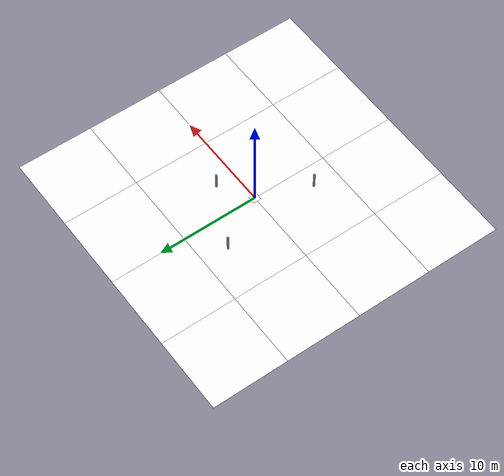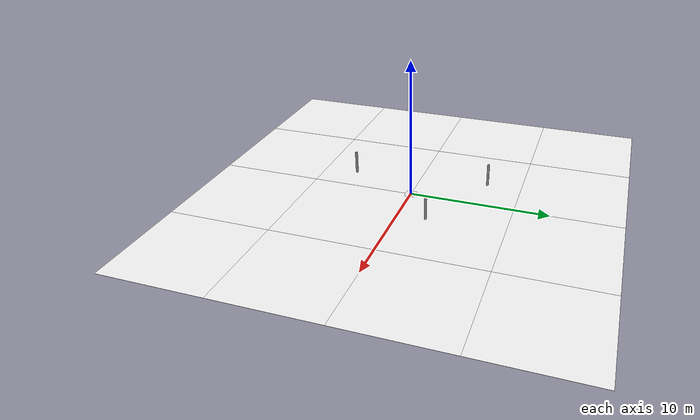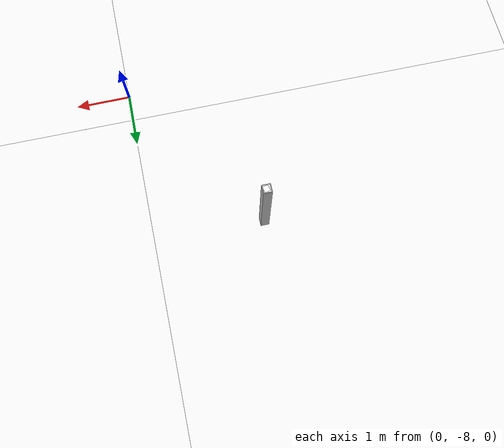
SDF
<?xml version='1.0' encoding='utf-8'?>
<sdf version='1.10'>
  <world name='eletroquad26_m3'>

    <physics type='ode'>
      <max_step_size>0.001</max_step_size>
      <real_time_factor>1</real_time_factor>
      <real_time_update_rate>1000</real_time_update_rate>
    </physics>
    <gravity>0 0 -9.8000000000000007</gravity>
    <magnetic_field>5.5644999999999998e-06 2.2875799999999999e-05 -4.2388400000000002e-05</magnetic_field>
    <atmosphere type='adiabatic'/>

    <scene>
      <ambient>0.400000006 0.400000006 0.400000006 1</ambient>
      <background>0.699999988 0.699999988 0.699999988 1</background>
      <sky/>
      <shadows>true</shadows>
    </scene>

    <!-- Manometros -->
    <model name='manometer1'>
      <include merge='true'><uri>models/eletroquad_26/faulty_or_not/manometer</uri></include>
      <pose degrees='true'>3 2 0.86 0 0 -90</pose> <!--line 24-->
      <static>true</static>
    </model>
    <model name='pointer1'>
      <include merge='true'><uri>models/eletroquad_26/faulty_or_not/manometer_pointer</uri></include>
      <pose degrees='true'>3.009 2 1.711 0 0 341</pose> <!--line 29-->
      <static>true</static>
    </model>

    <model name='manometer2'>
      <include merge='true'><uri>models/eletroquad_26/faulty_or_not/manometer</uri></include>
      <pose degrees='true'>-3 5 0.86 0 0 -90</pose> <!--line 35-->
      <static>true</static>
    </model>
    <model name='pointer2'>
      <include merge='true'><uri>models/eletroquad_26/faulty_or_not/manometer_pointer</uri></include>
      <pose degrees='true'>-2.991 5 1.711 0 0 218</pose> <!--line 40-->
      <static>true</static>
    </model>

    <model name='manometer3'>
      <include merge='true'><uri>models/eletroquad_26/faulty_or_not/manometer</uri></include>
      <pose degrees='true'>-2 -5 0.86 0 0 -90</pose> <!--line 46-->
      <static>true</static>
    </model>
    <model name='pointer3'>
      <include merge='true'><uri>models/eletroquad_26/faulty_or_not/manometer_pointer</uri></include>
      <pose degrees='true'>-1.991 -5 1.711 0 0 101</pose> <!--line 51-->
      <static>true</static>
    </model>
    <!-- Manometros -->

    <!-- Takeoff -->
    <include>
      <uri>models/eletroquad_26/miscs/takeoff_platform</uri>
      <static>true</static>
      <pose degrees='true'>0 0 0.011 0 0 0</pose>
    </include>
    <!-- Takeoff -->

    <!-- Arena -->
    <include>
      <uri>models/eletroquad_26/miscs/arenas/rectangle</uri>
      <static>true</static>
      <pose degrees='true'>0 0 0.01 0 0 0</pose>
    </include>
    <!-- Arena -->

    <!-- Chao -->
    <include>
      <uri>models/eletroquad_26/miscs/ground_level</uri>
      <pose/>
    </include>
    <!-- Chao -->

    <!-- Luz -->
    <light name='sun' type='directional'>
      <pose>0 0 10 0 0 0</pose>
      <cast_shadows>true</cast_shadows>
      <intensity>1</intensity>
      <direction>-0.5 0.10000000000000001 -0.90000000000000002</direction>
      <diffuse>0.800000012 0.800000012 0.800000012 1</diffuse>
      <specular>0.200000003 0.200000003 0.200000003 1</specular>
      <attenuation>
        <range>1000</range>
        <linear>0.01</linear>
        <constant>0.90000000000000002</constant>
        <quadratic>0.001</quadratic>
      </attenuation>
      <spot>
        <inner_angle>0</inner_angle>
        <outer_angle>0</outer_angle>
        <falloff>0</falloff>
      </spot>
    </light>
    <!-- Luz -->

  <spherical_coordinates>
    <surface_model>EARTH_WGS84</surface_model>
    <world_frame_orientation>ENU</world_frame_orientation>
    <latitude_deg>47.397971057728974</latitude_deg>
    <longitude_deg>8.546163739800146</longitude_deg>
    <elevation>0</elevation>
  </spherical_coordinates>
  </world>
</sdf>

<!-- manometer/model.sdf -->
<sdf version='1.10'>
<model name='manometer'>
  <link name='manometer_link'>
    <enable_wind>false</enable_wind>
    <collision name='manometer_collision'>
      <geometry><box><size>0.15 0.15 1.7</size></box></geometry>
      <surface>
        <friction><ode/></friction>
        <bounce/>
        <contact/>
      </surface>
    </collision>
    <visual name='manometer_visual'>
      <geometry><box><size>0.15 0.15 1.7</size></box></geometry>
      <material>
        <diffuse>0.7 0.7 0.7 1</diffuse>
        <specular>1 1 1 1</specular>
      </material>
    </visual>
    <visual name='manometer_image'>
      <pose relative_to='manometer_collision'>0 0 0.8501 0 0 0</pose>
      <geometry><plane>
        <normal>0 0 1</normal>
        <size>0.127 0.127</size>
      </plane></geometry>
      <material>
        <diffuse>1 1 1 1</diffuse>
        <specular>1 1 1 1</specular>
        <pbr>
          <metal>
            <albedo_map>materials/textures/manometer.png</albedo_map>
            <metalness>0</metalness>
            <roughness>1</roughness>
          </metal>
        </pbr>
      </material>
    </visual>
  </link>
  <self_collide>false</self_collide>
  <static>true</static>
</model>
</sdf>

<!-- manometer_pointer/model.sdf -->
<sdf version='1.10'>
<model name='manometer_pointer'>
  <link name='pointer_link'>
    <enable_wind>false</enable_wind>
    <visual name='pointer_image'>
      <geometry><plane>
        <normal>0 0 1</normal>
        <size>0.1 0.1</size>
      </plane></geometry>
      <material>
        <diffuse>1 1 1 1</diffuse>
        <specular>1 1 1 1</specular>
        <pbr>
          <metal>
            <albedo_map>materials/textures/pointer.png</albedo_map>
            <metalness>0</metalness>
            <roughness>1</roughness>
          </metal>
        </pbr>
      </material>
    </visual>
  </link>
  <self_collide>false</self_collide>
  <static>true</static>
</model>
</sdf>

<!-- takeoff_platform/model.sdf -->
<sdf version='1.10'>
<model name='takeoff_platform'>
  <include merge='true'><uri>models/miscs/default_platform</uri></include>
  <link name='takeoff_link'>
    <enable_wind>false</enable_wind>
    <visual name='takeoff_image'>
      <pose>0 0 0.001 0 0 0</pose>
      <geometry><plane>
        <normal>0 0 1</normal>
        <size>0.8 0.8</size>
      </plane></geometry>
        <material>
        <diffuse>1 1 1 1</diffuse>
        <specular>1 1 1 1</specular>
        <pbr>
          <metal>
            <albedo_map>materials/textures/takeoff.png</albedo_map>
            <metalness>0</metalness>
            <roughness>1</roughness>
          </metal>
        </pbr>
        </material>
    </visual>
  </link>
  <self_collide>false</self_collide>
  <static>true</static>
</model>
</sdf>

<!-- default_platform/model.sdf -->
<sdf version='1.10'>
<model name='default_platform'>
  <link name='default_link'>
    <enable_wind>false</enable_wind>
    <collision name='default_collision'>
      <geometry><cylinder>
        <radius>0.4</radius>
        <length>0.001</length>
      </cylinder></geometry>
      <surface>
        <friction><ode/></friction>
        <bounce/>
        <contact/>
      </surface>
    </collision>
    <visual name='default_visual'>
      <geometry><cylinder>
        <radius>0.4</radius>
        <length>0.001</length>
      </cylinder></geometry>
      <material>
        <ambient>1 1 1 1</ambient>
        <diffuse>1 1 1 1</diffuse>
        <specular>1 1 1 1</specular>
      </material>
    </visual>
  </link>
  <self_collide>false</self_collide>
  <static>true</static>
</model>
</sdf>

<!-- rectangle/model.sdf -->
<sdf version='1.10'>
<model name='arena'>
  <link name='arena_link'>
    <enable_wind>false</enable_wind>
    <collision name='arena_collision'>
      <geometry><plane>
        <normal>0 0 1</normal>
        <size>7 13</size>
      </plane></geometry>
      <surface>
        <friction><ode/></friction>
        <bounce/>
        <contact/>
      </surface>
    </collision>
    <visual name='arena_visual'>
      <geometry><plane>
        <normal>0 0 1</normal>
        <size>7 13</size>
      </plane></geometry>
      <material>
        <ambient>0.4 0.4 0.4 1</ambient>
        <diffuse>1 1 1 1</diffuse>
        <specular>1 1 1 1</specular>
      </material>
    </visual>
  </link>
  <self_collide>false</self_collide>
</model>
</sdf>

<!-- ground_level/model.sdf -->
<sdf version='1.9'>
  <model name='ground_plane'>
    <static>true</static>
    <pose>0 0 0 0 0 0</pose>
    <self_collide>false</self_collide>
    <link name='link'>
      <collision name='collision'>
        <geometry>
          <plane>
            <normal>0 0 1</normal>
            <size>30 30</size>
          </plane>
        </geometry>
        <surface>
          <friction>
            <ode/>
          </friction>
          <bounce/>
          <contact/>
        </surface>
      </collision>
      <visual name='visual1'>
        <pose>-11.25 -11.25 0 0 0 1.5708</pose>
        <geometry>
          <plane>
            <normal>0 0 1</normal>
            <size>7.5 7.5</size>
          </plane>
        </geometry>
        <material>
          <diffuse>1.0 1.0 1.0</diffuse>
          <specular>1.0 1.0 1.0</specular>
          <pbr>
            <metal>
              <albedo_map>materials/textures/grass.png</albedo_map>
              <metalness>0</metalness>
              <roughness>0.7</roughness>
            </metal>
          </pbr>
        </material>
      </visual>
      <visual name='visual2'>
        <pose>-3.75 -11.25 0 0 0 3.14159</pose>
        <geometry>
          <plane>
            <normal>0 0 1</normal>
            <size>7.5 7.5</size>
          </plane>
        </geometry>
        <material>
          <diffuse>1.0 1.0 1.0</diffuse>
          <specular>1.0 1.0 1.0</specular>
          <pbr>
            <metal>
              <albedo_map>materials/textures/grass.png</albedo_map>
              <metalness>0</metalness>
              <roughness>0.7</roughness>
            </metal>
          </pbr>
        </material>
      </visual>
      <visual name='visual3'>
        <pose>3.75 -11.25 0 0 0 4.71239</pose>
        <geometry>
          <plane>
            <normal>0 0 1</normal>
            <size>7.5 7.5</size>
          </plane>
        </geometry>
        <material>
          <diffuse>1.0 1.0 1.0</diffuse>
          <specular>1.0 1.0 1.0</specular>
          <pbr>
            <metal>
              <albedo_map>materials/textures/grass.png</albedo_map>
              <metalness>0</metalness>
              <roughness>0.7</roughness>
            </metal>
          </pbr>
        </material>
      </visual>
      <visual name='visual4'>
        <pose>11.25 -11.25 0 0 0 0</pose>
        <geometry>
          <plane>
            <normal>0 0 1</normal>
            <size>7.5 7.5</size>
          </plane>
        </geometry>
        <material>
          <diffuse>1.0 1.0 1.0</diffuse>
          <specular>1.0 1.0 1.0</specular>
          <pbr>
            <metal>
              <albedo_map>materials/textures/grass.png</albedo_map>
              <metalness>0</metalness>
              <roughness>0.7</roughness>
            </metal>
          </pbr>
        </material>
      </visual>
      <visual name='visual5'>
        <pose>-11.25 -3.75 0 0 0 3.14159</pose>
        <geometry>
          <plane>
            <normal>0 0 1</normal>
            <size>7.5 7.5</size>
          </plane>
        </geometry>
        <material>
          <diffuse>1.0 1.0 1.0</diffuse>
          <specular>1.0 1.0 1.0</specular>
          <pbr>
            <metal>
              <albedo_map>materials/textures/grass.png</albedo_map>
              <metalness>0</metalness>
              <roughness>0.7</roughness>
            </metal>
          </pbr>
        </material>
      </visual>
      <visual name='visual6'>
        <pose>-3.75 -3.75 0 0 0 1.5708</pose>
        <geometry>
          <plane>
            <normal>0 0 1</normal>
            <size>7.5 7.5</size>
          </plane>
        </geometry>
        <material>
          <diffuse>1.0 1.0 1.0</diffuse>
          <specular>1.0 1.0 1.0</specular>
          <pbr>
            <metal>
              <albedo_map>materials/textures/grass.png</albedo_map>
              <metalness>0</metalness>
              <roughness>0.7</roughness>
            </metal>
          </pbr>
        </material>
      </visual>
      <visual name='visual7'>
        <pose>3.75 -3.75 0 0 0 0</pose>
        <geometry>
          <plane>
            <normal>0 0 1</normal>
            <size>7.5 7.5</size>
          </plane>
        </geometry>
        <material>
          <diffuse>1.0 1.0 1.0</diffuse>
          <specular>1.0 1.0 1.0</specular>
          <pbr>
            <metal>
              <albedo_map>materials/textures/grass.png</albedo_map>
              <metalness>0</metalness>
              <roughness>0.7</roughness>
            </metal>
          </pbr>
        </material>
      </visual>
      <visual name='visual8'>
        <pose>11.25 -3.75 0 0 0 4.71239</pose>
        <geometry>
          <plane>
            <normal>0 0 1</normal>
            <size>7.5 7.5</size>
          </plane>
        </geometry>
        <material>
          <diffuse>1.0 1.0 1.0</diffuse>
          <specular>1.0 1.0 1.0</specular>
          <pbr>
            <metal>
              <albedo_map>materials/textures/grass.png</albedo_map>
              <metalness>0</metalness>
              <roughness>0.7</roughness>
            </metal>
          </pbr>
        </material>
      </visual>
      <visual name='visual9'>
        <pose>-11.25 3.75 0 0 0 0</pose>
        <geometry>
          <plane>
            <normal>0 0 1</normal>
            <size>7.5 7.5</size>
          </plane>
        </geometry>
        <material>
          <diffuse>1.0 1.0 1.0</diffuse>
          <specular>1.0 1.0 1.0</specular>
          <pbr>
            <metal>
              <albedo_map>materials/textures/grass.png</albedo_map>
              <metalness>0</metalness>
              <roughness>0.7</roughness>
            </metal>
          </pbr>
        </material>
      </visual>
      <visual name='visual10'>
        <pose>-3.75 3.75 0 0 0 0</pose>
        <geometry>
          <plane>
            <normal>0 0 1</normal>
            <size>7.5 7.5</size>
          </plane>
        </geometry>
        <material>
          <diffuse>1.0 1.0 1.0</diffuse>
          <specular>1.0 1.0 1.0</specular>
          <pbr>
            <metal>
              <albedo_map>materials/textures/grass.png</albedo_map>
              <metalness>0</metalness>
              <roughness>0.7</roughness>
            </metal>
          </pbr>
        </material>
      </visual>
      <visual name='visual11'>
        <pose>3.75 3.75 0 0 0 3.14159</pose>
        <geometry>
          <plane>
            <normal>0 0 1</normal>
            <size>7.5 7.5</size>
          </plane>
        </geometry>
        <material>
          <diffuse>1.0 1.0 1.0</diffuse>
          <specular>1.0 1.0 1.0</specular>
          <pbr>
            <metal>
              <albedo_map>materials/textures/grass.png</albedo_map>
              <metalness>0</metalness>
              <roughness>0.7</roughness>
            </metal>
          </pbr>
        </material>
      </visual>
      <visual name='visual12'>
        <pose>11.25 3.75 0 0 0 4.71239</pose>
        <geometry>
          <plane>
            <normal>0 0 1</normal>
            <size>7.5 7.5</size>
          </plane>
        </geometry>
        <material>
          <diffuse>1.0 1.0 1.0</diffuse>
          <specular>1.0 1.0 1.0</specular>
          <pbr>
            <metal>
              <albedo_map>materials/textures/grass.png</albedo_map>
              <metalness>0</metalness>
              <roughness>0.7</roughness>
            </metal>
          </pbr>
        </material>
      </visual>
      <visual name='visual13'>
        <pose>-11.25 11.25 0 0 0 1.5708</pose>
        <geometry>
          <plane>
            <normal>0 0 1</normal>
            <size>7.5 7.5</size>
          </plane>
        </geometry>
        <material>
          <diffuse>1.0 1.0 1.0</diffuse>
          <specular>1.0 1.0 1.0</specular>
          <pbr>
            <metal>
              <albedo_map>materials/textures/grass.png</albedo_map>
              <metalness>0</metalness>
              <roughness>0.7</roughness>
            </metal>
          </pbr>
        </material>
      </visual>
      <visual name='visual14'>
        <pose>-3.75 11.25 0 0 0 3.14159</pose>
        <geometry>
          <plane>
            <normal>0 0 1</normal>
            <size>7.5 7.5</size>
          </plane>
        </geometry>
        <material>
          <diffuse>1.0 1.0 1.0</diffuse>
          <specular>1.0 1.0 1.0</specular>
          <pbr>
            <metal>
              <albedo_map>materials/textures/grass.png</albedo_map>
              <metalness>0</metalness>
              <roughness>0.7</roughness>
            </metal>
          </pbr>
        </material>
      </visual>
      <visual name='visual15'>
        <pose>3.75 11.25 0 0 0 0</pose>
        <geometry>
          <plane>
            <normal>0 0 1</normal>
            <size>7.5 7.5</size>
          </plane>
        </geometry>
        <material>
          <diffuse>1.0 1.0 1.0</diffuse>
          <specular>1.0 1.0 1.0</specular>
          <pbr>
            <metal>
              <albedo_map>materials/textures/grass.png</albedo_map>
              <metalness>0</metalness>
              <roughness>0.7</roughness>
            </metal>
          </pbr>
        </material>
      </visual>
      <visual name='visual16'>
        <pose>11.25 11.25 0 0 0 0</pose>
        <geometry>
          <plane>
            <normal>0 0 1</normal>
            <size>7.5 7.5</size>
          </plane>
        </geometry>
        <material>
          <diffuse>1.0 1.0 1.0</diffuse>
          <specular>1.0 1.0 1.0</specular>
          <pbr>
            <metal>
              <albedo_map>materials/textures/grass.png</albedo_map>
              <metalness>0</metalness>
              <roughness>0.7</roughness>
            </metal>
          </pbr>
        </material>
      </visual>
      <enable_wind>false</enable_wind>
    </link>
  </model>
</sdf>
